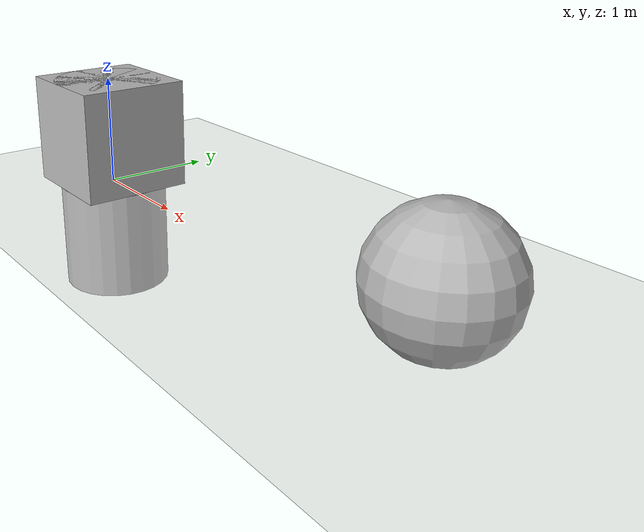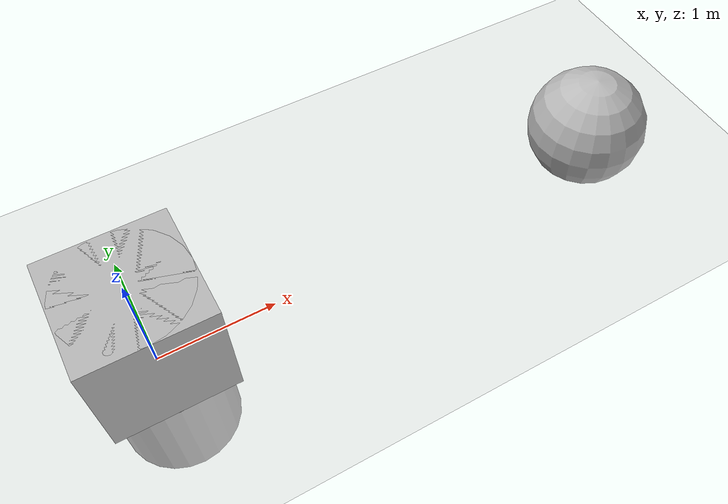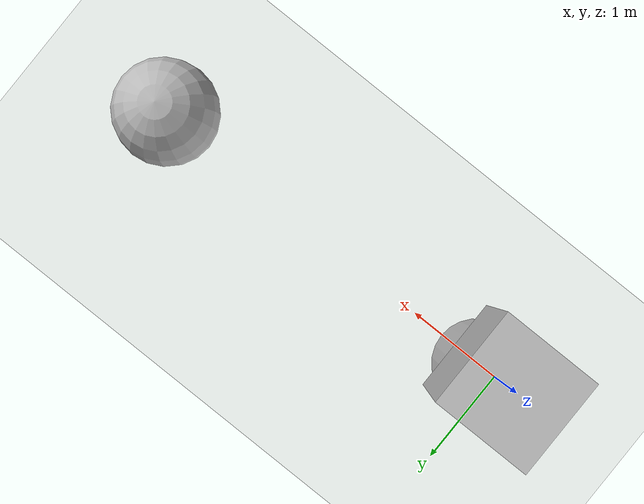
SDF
<sdf version='1.6'>
    <world name='default'>

        <plugin name="model_attachment_plugin" filename="libgazebo_model_attachment_plugin_lib.so"></plugin>
        <plugin name="gazebo_no_physics_world_plugin" filename="libgazebo_no_physics_world_plugin.so"></plugin>
        <plugin name="gazebo_ros_state" filename="libgazebo_ros_state.so">
            <ros>
                <namespace>/gazebo</namespace>
            </ros>

            <update_rate>1.0</update_rate>
        </plugin>

        <light name='sun' type='directional'>
            <cast_shadows>1</cast_shadows>
            <pose frame=''>0 0 10 0 -0 0</pose>
            <diffuse>0.8 0.8 0.8 1</diffuse>
            <specular>0.1 0.1 0.1 1</specular>
            <attenuation>
                <range>1000</range>
                <constant>0.9</constant>
                <linear>0.01</linear>
                <quadratic>0.001</quadratic>
            </attenuation>
            <direction>-0.5 0.5 -1</direction>
        </light>

        <model name='ground_plane'>
            <static>1</static>
            <link name='link'>
                <collision name='collision'>
                    <geometry>
                        <plane>
                            <normal>0 0 1</normal>
                            <size>100 100</size>
                        </plane>
                    </geometry>
                    <surface>
                        <friction>
                            <ode>
                                <mu>100</mu>
                                <mu2>50</mu2>
                            </ode>
                            <torsional>
                                <ode/>
                            </torsional>
                        </friction>
                        <contact>
                            <ode/>
                        </contact>
                        <bounce/>
                    </surface>
                    <max_contacts>10</max_contacts>
                </collision>
                <visual name='visual'>
                    <cast_shadows>0</cast_shadows>
                    <geometry>
                        <plane>
                            <normal>0 0 1</normal>
                            <size>100 100</size>
                        </plane>
                    </geometry>
                    <material>
                        <script>
                            <uri>file://media/materials/scripts/gazebo.material</uri>
                            <name>Gazebo/Grey</name>
                        </script>
                    </material>
                </visual>
            </link>
        </model>

        <gravity>0 0 -9.8</gravity>
        <magnetic_field>6e-06 2.3e-05 -4.2e-05</magnetic_field>

        <atmosphere type='adiabatic'/>
        <physics name='default_physics' default='0' type='ode'>
            <max_step_size>0.001</max_step_size>
            <real_time_factor>1</real_time_factor>
            <real_time_update_rate>1000</real_time_update_rate>
        </physics>

        <scene>
            <ambient>0.4 0.4 0.4 1</ambient>
            <background>0.7 0.7 0.7 1</background>
            <shadows>1</shadows>
        </scene>

        <model name='box'>
            <pose>0 0 0.5 0 0 0</pose>

            <link name='root_link'>
                <pose>0 0 0 0 0 0</pose>
                <inertial>
                    <mass>1</mass>
                    <inertia>
                        <ixx>0.166667</ixx>
                        <ixy>0</ixy>
                        <ixz>0</ixz>
                        <iyy>0.166667</iyy>
                        <iyz>0</iyz>
                        <izz>0.166667</izz>
                    </inertia>
                </inertial>
                <collision name='collision'>
                    <geometry>
                        <box>
                            <size>1 1 1</size>
                        </box>
                    </geometry>
                    <max_contacts>10</max_contacts>
                </collision>
                <visual name='visual'>
                    <geometry>
                        <box>
                            <size>1 1 1</size>
                        </box>
                    </geometry>
                </visual>
            </link>

            <link name='attachment_link'>
                <pose>0.5 0 0 0 0 0</pose>
                <inertial>
                    <mass>0.001</mass>
                    <inertia>
                        <ixx>0.001</ixx>
                        <ixy>0</ixy>
                        <ixz>0</ixz>
                        <iyy>0.001</iyy>
                        <iyz>0</iyz>
                        <izz>0.001</izz>
                    </inertia>
                </inertial>
            </link>

            <joint name='attachment_joint' type='fixed'>
                <parent>root_link</parent>
                <child>attachment_link</child>
                <pose>0 0 0 0 0 0</pose>
            </joint>

        </model>

        <model name='sphere'>
            <pose>4 0 0.5 0 0 0</pose>

            <link name='root_link'>
                <pose>0 0 0 0 0 0</pose>
                <inertial>
                    <mass>1</mass>
                    <inertia>
                        <ixx>0.1</ixx>
                        <ixy>0</ixy>
                        <ixz>0</ixz>
                        <iyy>0.1</iyy>
                        <iyz>0</iyz>
                        <izz>0.1</izz>
                    </inertia>
                </inertial>
                <collision name='collision'>
                    <geometry>
                        <sphere>
                            <radius>0.5</radius>
                        </sphere>
                    </geometry>
                </collision>
                <visual name='visual'>
                    <geometry>
                        <sphere>
                            <radius>0.5</radius>
                        </sphere>
                    </geometry>
                </visual>
            </link>

            <link name='attachment_link'>
                <pose>-0.6 0 0 0 0 0</pose>
                <inertial>
                    <mass>0.001</mass>
                    <inertia>
                        <ixx>0.001</ixx>
                        <ixy>0</ixy>
                        <ixz>0</ixz>
                        <iyy>0.001</iyy>
                        <iyz>0</iyz>
                        <izz>0.001</izz>
                    </inertia>
                </inertial>
            </link>

            <joint name='attachment_joint' type='fixed'>
                <parent>root_link</parent>
                <child>attachment_link</child>
                <pose>0 0 0 0 0 0</pose>
            </joint>
        </model>

        <model name='cylinder'>
            <pose>0 0 0 0 0 0</pose>

            <link name='root_link'>
                <pose>0 0 0 0 0 0</pose>
                <inertial>
                    <mass>1</mass>
                    <inertia>
                        <ixx>0.166667</ixx>
                        <ixy>0</ixy>
                        <ixz>0</ixz>
                        <iyy>0.166667</iyy>
                        <iyz>0</iyz>
                        <izz>0.166667</izz>
                    </inertia>
                </inertial>
                <collision name='collision'>
                    <geometry>
                        <cylinder>
                            <radius>0.5</radius>
                            <length>2</length>
                        </cylinder>
                    </geometry>
                    <max_contacts>10</max_contacts>
                </collision>
                <visual name='visual'>
                    <geometry>
                        <cylinder>
                            <radius>0.5</radius>
                            <length>2</length>
                        </cylinder>
                    </geometry>
                </visual>
            </link>

            <link name='attachment_link'>
                <pose>0.5 0 0 0 0 0</pose>
                <inertial>
                    <mass>0.001</mass>
                    <inertia>
                        <ixx>0.001</ixx>
                        <ixy>0</ixy>
                        <ixz>0</ixz>
                        <iyy>0.001</iyy>
                        <iyz>0</iyz>
                        <izz>0.001</izz>
                    </inertia>
                </inertial>
            </link>

            <joint name='attachment_joint' type='fixed'>
                <parent>root_link</parent>
                <child>attachment_link</child>
                <pose>0 0 0 0 0 0</pose>
            </joint>

        </model>

    </world>
</sdf>
